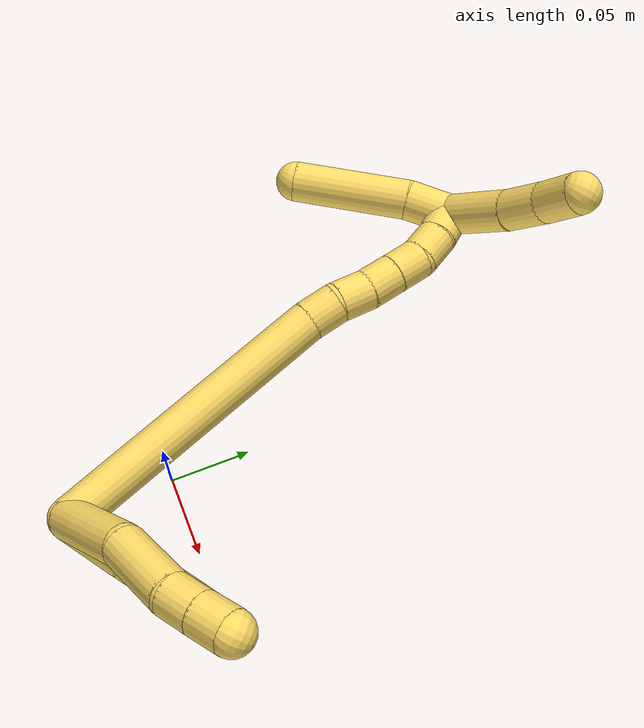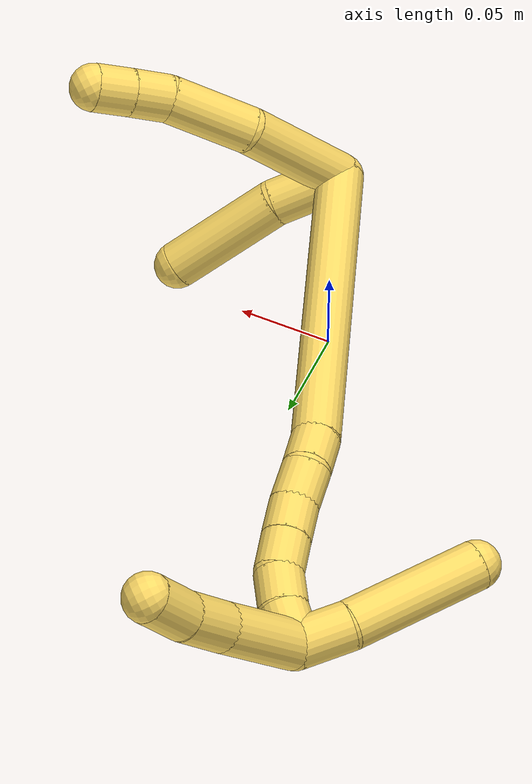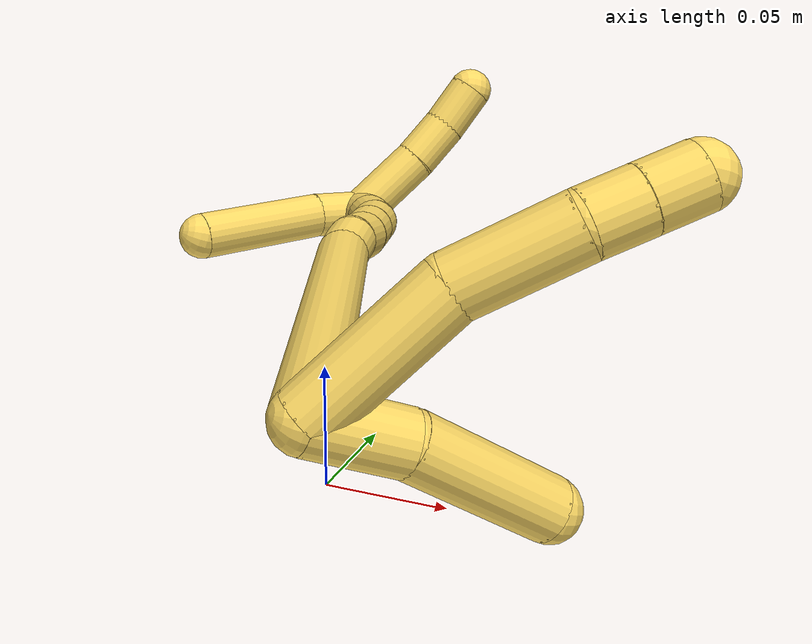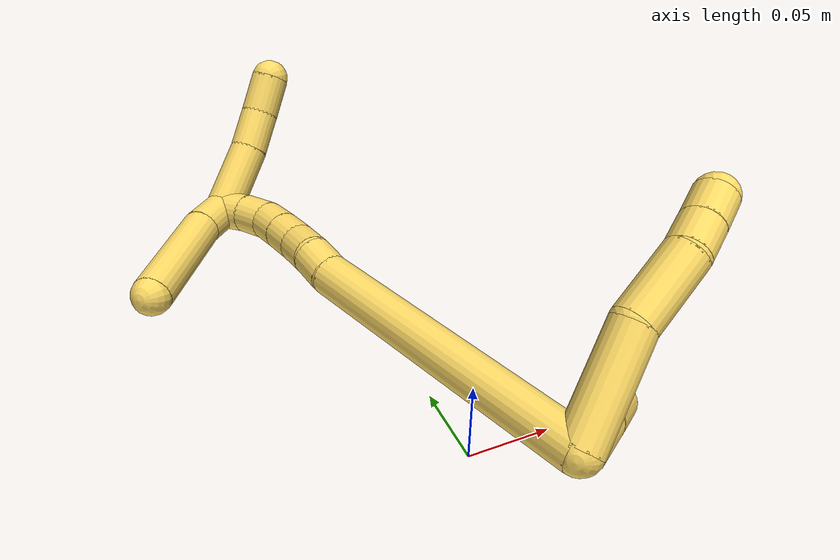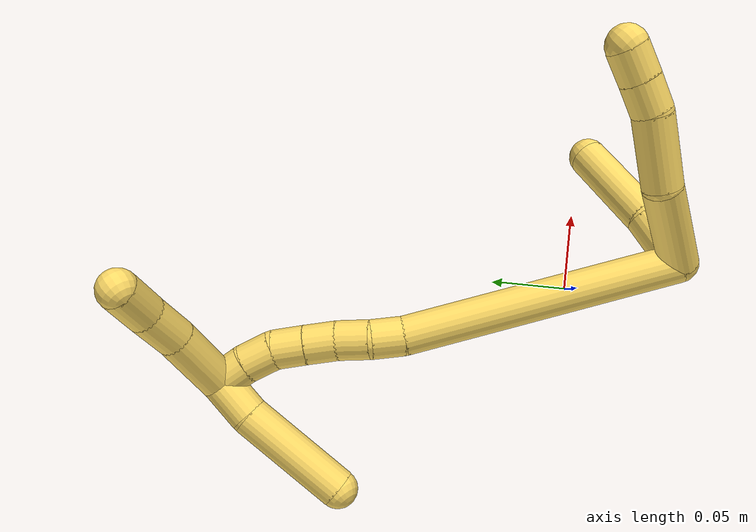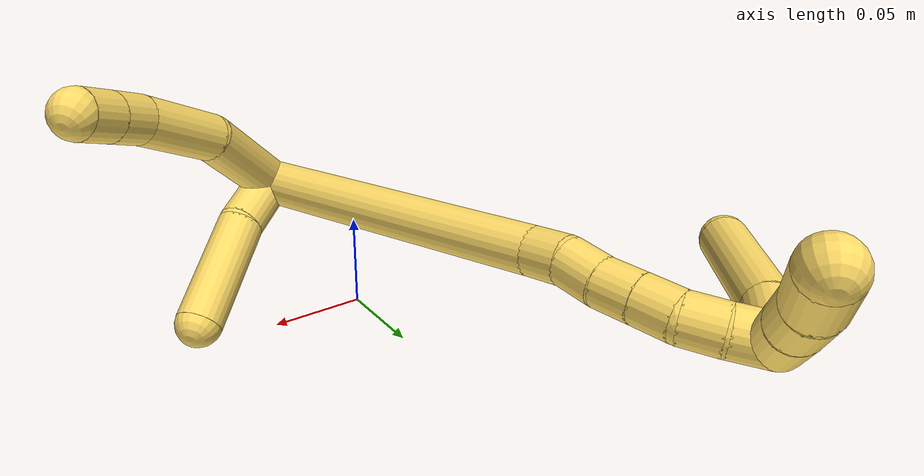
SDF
<sdf version="1.7">
 <world name="default">
  <model name="5">
   <static>0</static>
   <link name="5">
    <collision name="collision-cylinder-e_1_2_8">
     <pose>0.025105 0.011756 -0.015418 -2.49014 0.913166 -1.93686</pose>
     <geometry><cylinder><radius>0.0125</radius><length>0.063441</length></cylinder></geometry>
     <surface>
      <friction><ode><mu>1.16</mu><mu2>1.16</mu2><slip1>0</slip1><slip2>0</slip2></ode></friction>
      <contact><ode><kp>1e+06</kp><kd>1</kd><max_vel>0</max_vel><min_depth>0.001</min_depth></ode></contact>
     </surface>
    </collision>
    <visual name="visual-cylinder-e_1_2_8">
     <pose>0.025105 0.011756 -0.015418 -2.49014 0.913166 -1.93686</pose>
     <geometry><cylinder><radius>0.0125</radius><length>0.063441</length></cylinder></geometry>
     <material><ambient>1 0.858824 0.4 1</ambient></material>
    </visual>
    <collision name="collision-cylinder-e_2_8_9">
     <pose>0.06788 0.026101 -0.045415 -2.9659 0.873353 -2.76857</pose>
     <geometry><cylinder><radius>0.0125</radius><length>0.046108</length></cylinder></geometry>
     <surface>
      <friction><ode><mu>1.16</mu><mu2>1.16</mu2><slip1>0</slip1><slip2>0</slip2></ode></friction>
      <contact><ode><kp>1e+06</kp><kd>1</kd><max_vel>0</max_vel><min_depth>0.001</min_depth></ode></contact>
     </surface>
    </collision>
    <visual name="visual-cylinder-e_2_8_9">
     <pose>0.06788 0.026101 -0.045415 -2.9659 0.873353 -2.76857</pose>
     <geometry><cylinder><radius>0.0125</radius><length>0.046108</length></cylinder></geometry>
     <material><ambient>1 0.858824 0.4 1</ambient></material>
    </visual>
    <collision name="collision-cylinder-e_3_9_10">
     <pose>0.091873 0.03074 -0.067686 -2.88099 0.671183 -2.42279</pose>
     <geometry><cylinder><radius>0.0125</radius><length>0.020331</length></cylinder></geometry>
     <surface>
      <friction><ode><mu>1.16</mu><mu2>1.16</mu2><slip1>0</slip1><slip2>0</slip2></ode></friction>
      <contact><ode><kp>1e+06</kp><kd>1</kd><max_vel>0</max_vel><min_depth>0.001</min_depth></ode></contact>
     </surface>
    </collision>
    <visual name="visual-cylinder-e_3_9_10">
     <pose>0.091873 0.03074 -0.067686 -2.88099 0.671183 -2.42279</pose>
     <geometry><cylinder><radius>0.0125</radius><length>0.020331</length></cylinder></geometry>
     <material><ambient>1 0.858824 0.4 1</ambient></material>
    </visual>
    <collision name="collision-cylinder-e_4_10_6">
     <pose>0.104302 0.03496 -0.083071 -2.86683 0.652389 -2.36563</pose>
     <geometry><cylinder><radius>0.0125</radius><length>0.02012</length></cylinder></geometry>
     <surface>
      <friction><ode><mu>1.16</mu><mu2>1.16</mu2><slip1>0</slip1><slip2>0</slip2></ode></friction>
      <contact><ode><kp>1e+06</kp><kd>1</kd><max_vel>0</max_vel><min_depth>0.001</min_depth></ode></contact>
     </surface>
    </collision>
    <visual name="visual-cylinder-e_4_10_6">
     <pose>0.104302 0.03496 -0.083071 -2.86683 0.652389 -2.36563</pose>
     <geometry><cylinder><radius>0.0125</radius><length>0.02012</length></cylinder></geometry>
     <material><ambient>1 0.858824 0.4 1</ambient></material>
    </visual>
    <collision name="collision-cylinder-e_1_2_11">
     <pose>0.001069 -0.002514 -0.018424 3.00599 0.05743 0.800345</pose>
     <geometry><cylinder><radius>0.0125</radius><length>0.03725</length></cylinder></geometry>
     <surface>
      <friction><ode><mu>1.16</mu><mu2>1.16</mu2><slip1>0</slip1><slip2>0</slip2></ode></friction>
      <contact><ode><kp>1e+06</kp><kd>1</kd><max_vel>0</max_vel><min_depth>0.001</min_depth></ode></contact>
     </surface>
    </collision>
    <visual name="visual-cylinder-e_1_2_11">
     <pose>0.001069 -0.002514 -0.018424 3.00599 0.05743 0.800345</pose>
     <geometry><cylinder><radius>0.0125</radius><length>0.03725</length></cylinder></geometry>
     <material><ambient>1 0.858824 0.4 1</ambient></material>
    </visual>
    <collision name="collision-cylinder-e_2_11_5">
     <pose>-0.002636 -0.011553 -0.067163 2.92958 -0.15275 -1.24696</pose>
     <geometry><cylinder><radius>0.0125</radius><length>0.06275</length></cylinder></geometry>
     <surface>
      <friction><ode><mu>1.16</mu><mu2>1.16</mu2><slip1>0</slip1><slip2>0</slip2></ode></friction>
      <contact><ode><kp>1e+06</kp><kd>1</kd><max_vel>0</max_vel><min_depth>0.001</min_depth></ode></contact>
     </surface>
    </collision>
    <visual name="visual-cylinder-e_2_11_5">
     <pose>-0.002636 -0.011553 -0.067163 2.92958 -0.15275 -1.24696</pose>
     <geometry><cylinder><radius>0.0125</radius><length>0.06275</length></cylinder></geometry>
     <material><ambient>1 0.858824 0.4 1</ambient></material>
    </visual>
    <collision name="collision-cylinder-e_1_2_12">
     <pose>-0.037162 0.07316 -0.034998 -2.017 -0.429671 0.666691</pose>
     <geometry><cylinder><radius>0.0125</radius><length>0.178419</length></cylinder></geometry>
     <surface>
      <friction><ode><mu>1.16</mu><mu2>1.16</mu2><slip1>0</slip1><slip2>0</slip2></ode></friction>
      <contact><ode><kp>1e+06</kp><kd>1</kd><max_vel>0</max_vel><min_depth>0.001</min_depth></ode></contact>
     </surface>
    </collision>
    <visual name="visual-cylinder-e_1_2_12">
     <pose>-0.037162 0.07316 -0.034998 -2.017 -0.429671 0.666691</pose>
     <geometry><cylinder><radius>0.0125</radius><length>0.178419</length></cylinder></geometry>
     <material><ambient>1 0.858824 0.4 1</ambient></material>
    </visual>
    <collision name="collision-cylinder-e_2_12_13">
     <pose>-0.077281 0.154756 -0.075092 -2.11424 -0.291495 0.509058</pose>
     <geometry><cylinder><radius>0.0125</radius><length>0.020579</length></cylinder></geometry>
     <surface>
      <friction><ode><mu>1.16</mu><mu2>1.16</mu2><slip1>0</slip1><slip2>0</slip2></ode></friction>
      <contact><ode><kp>1e+06</kp><kd>1</kd><max_vel>0</max_vel><min_depth>0.001</min_depth></ode></contact>
     </surface>
    </collision>
    <visual name="visual-cylinder-e_2_12_13">
     <pose>-0.077281 0.154756 -0.075092 -2.11424 -0.291495 0.509058</pose>
     <geometry><cylinder><radius>0.0125</radius><length>0.020579</length></cylinder></geometry>
     <material><ambient>1 0.858824 0.4 1</ambient></material>
    </visual>
    <collision name="collision-cylinder-e_3_13_14">
     <pose>-0.084676 0.170145 -0.086685 -2.32233 -0.436355 0.944215</pose>
     <geometry><cylinder><radius>0.0125</radius><length>0.021</length></cylinder></geometry>
     <surface>
      <friction><ode><mu>1.16</mu><mu2>1.16</mu2><slip1>0</slip1><slip2>0</slip2></ode></friction>
      <contact><ode><kp>1e+06</kp><kd>1</kd><max_vel>0</max_vel><min_depth>0.001</min_depth></ode></contact>
     </surface>
    </collision>
    <visual name="visual-cylinder-e_3_13_14">
     <pose>-0.084676 0.170145 -0.086685 -2.32233 -0.436355 0.944215</pose>
     <geometry><cylinder><radius>0.0125</radius><length>0.021</length></cylinder></geometry>
     <material><ambient>1 0.858824 0.4 1</ambient></material>
    </visual>
    <collision name="collision-cylinder-e_4_14_15">
     <pose>-0.093309 0.184551 -0.098364 -2.17824 -0.432944 0.796448</pose>
     <geometry><cylinder><radius>0.0125</radius><length>0.020001</length></cylinder></geometry>
     <surface>
      <friction><ode><mu>1.16</mu><mu2>1.16</mu2><slip1>0</slip1><slip2>0</slip2></ode></friction>
      <contact><ode><kp>1e+06</kp><kd>1</kd><max_vel>0</max_vel><min_depth>0.001</min_depth></ode></contact>
     </surface>
    </collision>
    <visual name="visual-cylinder-e_4_14_15">
     <pose>-0.093309 0.184551 -0.098364 -2.17824 -0.432944 0.796448</pose>
     <geometry><cylinder><radius>0.0125</radius><length>0.020001</length></cylinder></geometry>
     <material><ambient>1 0.858824 0.4 1</ambient></material>
    </visual>
    <collision name="collision-cylinder-e_5_15_16">
     <pose>-0.101934 0.199377 -0.108648 -2.17624 -0.45886 0.83851</pose>
     <geometry><cylinder><radius>0.0125</radius><length>0.020001</length></cylinder></geometry>
     <surface>
      <friction><ode><mu>1.16</mu><mu2>1.16</mu2><slip1>0</slip1><slip2>0</slip2></ode></friction>
      <contact><ode><kp>1e+06</kp><kd>1</kd><max_vel>0</max_vel><min_depth>0.001</min_depth></ode></contact>
     </surface>
    </collision>
    <visual name="visual-cylinder-e_5_15_16">
     <pose>-0.101934 0.199377 -0.108648 -2.17624 -0.45886 0.83851</pose>
     <geometry><cylinder><radius>0.0125</radius><length>0.020001</length></cylinder></geometry>
     <material><ambient>1 0.858824 0.4 1</ambient></material>
    </visual>
    <collision name="collision-cylinder-e_6_16_17">
     <pose>-0.112156 0.214509 -0.116245 -1.88183 -0.617864 0.825381</pose>
     <geometry><cylinder><radius>0.0125</radius><length>0.02</length></cylinder></geometry>
     <surface>
      <friction><ode><mu>1.16</mu><mu2>1.16</mu2><slip1>0</slip1><slip2>0</slip2></ode></friction>
      <contact><ode><kp>1e+06</kp><kd>1</kd><max_vel>0</max_vel><min_depth>0.001</min_depth></ode></contact>
     </surface>
    </collision>
    <visual name="visual-cylinder-e_6_16_17">
     <pose>-0.112156 0.214509 -0.116245 -1.88183 -0.617864 0.825381</pose>
     <geometry><cylinder><radius>0.0125</radius><length>0.02</length></cylinder></geometry>
     <material><ambient>1 0.858824 0.4 1</ambient></material>
    </visual>
    <collision name="collision-cylinder-e_7_17_1">
     <pose>-0.124478 0.229751 -0.11993 -1.72855 -0.711255 0.820914</pose>
     <geometry><cylinder><radius>0.0125</radius><length>0.020001</length></cylinder></geometry>
     <surface>
      <friction><ode><mu>1.16</mu><mu2>1.16</mu2><slip1>0</slip1><slip2>0</slip2></ode></friction>
      <contact><ode><kp>1e+06</kp><kd>1</kd><max_vel>0</max_vel><min_depth>0.001</min_depth></ode></contact>
     </surface>
    </collision>
    <visual name="visual-cylinder-e_7_17_1">
     <pose>-0.124478 0.229751 -0.11993 -1.72855 -0.711255 0.820914</pose>
     <geometry><cylinder><radius>0.0125</radius><length>0.020001</length></cylinder></geometry>
     <material><ambient>1 0.858824 0.4 1</ambient></material>
    </visual>
    <collision name="collision-cylinder-e_1_1_18">
     <pose>-0.11473 0.248052 -0.133301 -2.41535 0.784904 -1.65628</pose>
     <geometry><cylinder><radius>0.0125</radius><length>0.046057</length></cylinder></geometry>
     <surface>
      <friction><ode><mu>1.16</mu><mu2>1.16</mu2><slip1>0</slip1><slip2>0</slip2></ode></friction>
      <contact><ode><kp>1e+06</kp><kd>1</kd><max_vel>0</max_vel><min_depth>0.001</min_depth></ode></contact>
     </surface>
    </collision>
    <visual name="visual-cylinder-e_1_1_18">
     <pose>-0.11473 0.248052 -0.133301 -2.41535 0.784904 -1.65628</pose>
     <geometry><cylinder><radius>0.0125</radius><length>0.046057</length></cylinder></geometry>
     <material><ambient>1 0.858824 0.4 1</ambient></material>
    </visual>
    <collision name="collision-cylinder-e_2_18_19">
     <pose>-0.088896 0.266279 -0.151636 -2.26394 0.781622 -1.44084</pose>
     <geometry><cylinder><radius>0.0125</radius><length>0.027139</length></cylinder></geometry>
     <surface>
      <friction><ode><mu>1.16</mu><mu2>1.16</mu2><slip1>0</slip1><slip2>0</slip2></ode></friction>
      <contact><ode><kp>1e+06</kp><kd>1</kd><max_vel>0</max_vel><min_depth>0.001</min_depth></ode></contact>
     </surface>
    </collision>
    <visual name="visual-cylinder-e_2_18_19">
     <pose>-0.088896 0.266279 -0.151636 -2.26394 0.781622 -1.44084</pose>
     <geometry><cylinder><radius>0.0125</radius><length>0.027139</length></cylinder></geometry>
     <material><ambient>1 0.858824 0.4 1</ambient></material>
    </visual>
    <collision name="collision-cylinder-e_3_19_4">
     <pose>-0.06893 0.280767 -0.162392 -2.1473 0.889171 -1.44103</pose>
     <geometry><cylinder><radius>0.0125</radius><length>0.026805</length></cylinder></geometry>
     <surface>
      <friction><ode><mu>1.16</mu><mu2>1.16</mu2><slip1>0</slip1><slip2>0</slip2></ode></friction>
      <contact><ode><kp>1e+06</kp><kd>1</kd><max_vel>0</max_vel><min_depth>0.001</min_depth></ode></contact>
     </surface>
    </collision>
    <visual name="visual-cylinder-e_3_19_4">
     <pose>-0.06893 0.280767 -0.162392 -2.1473 0.889171 -1.44103</pose>
     <geometry><cylinder><radius>0.0125</radius><length>0.026805</length></cylinder></geometry>
     <material><ambient>1 0.858824 0.4 1</ambient></material>
    </visual>
    <collision name="collision-cylinder-e_1_1_20">
     <pose>-0.13389 0.234641 -0.107661 0.19027 -0.207371 -0.019859</pose>
     <geometry><cylinder><radius>0.0125</radius><length>0.028013</length></cylinder></geometry>
     <surface>
      <friction><ode><mu>1.16</mu><mu2>1.16</mu2><slip1>0</slip1><slip2>0</slip2></ode></friction>
      <contact><ode><kp>1e+06</kp><kd>1</kd><max_vel>0</max_vel><min_depth>0.001</min_depth></ode></contact>
     </surface>
    </collision>
    <visual name="visual-cylinder-e_1_1_20">
     <pose>-0.13389 0.234641 -0.107661 0.19027 -0.207371 -0.019859</pose>
     <geometry><cylinder><radius>0.0125</radius><length>0.028013</length></cylinder></geometry>
     <material><ambient>1 0.858824 0.4 1</ambient></material>
    </visual>
    <collision name="collision-cylinder-e_2_20_3">
     <pose>-0.142489 0.219619 -0.06091 0.357327 -0.159458 -0.028855</pose>
     <geometry><cylinder><radius>0.0125</radius><length>0.071987</length></cylinder></geometry>
     <surface>
      <friction><ode><mu>1.16</mu><mu2>1.16</mu2><slip1>0</slip1><slip2>0</slip2></ode></friction>
      <contact><ode><kp>1e+06</kp><kd>1</kd><max_vel>0</max_vel><min_depth>0.001</min_depth></ode></contact>
     </surface>
    </collision>
    <visual name="visual-cylinder-e_2_20_3">
     <pose>-0.142489 0.219619 -0.06091 0.357327 -0.159458 -0.028855</pose>
     <geometry><cylinder><radius>0.0125</radius><length>0.071987</length></cylinder></geometry>
     <material><ambient>1 0.858824 0.4 1</ambient></material>
    </visual>
    <collision name="collision-sphere-3">
     <pose>-0.148204 0.207189 -0.027618 0 -0 0</pose>
     <geometry><sphere><radius>0.0125</radius></sphere></geometry>
     <surface>
      <friction><ode><mu>1.16</mu><mu2>1.16</mu2><slip1>0</slip1><slip2>0</slip2></ode></friction>
      <contact><ode><kp>1e+06</kp><kd>1</kd><max_vel>0</max_vel><min_depth>0.001</min_depth></ode></contact>
     </surface>
    </collision>
    <visual name="visual-sphere-3">
     <pose>-0.148204 0.207189 -0.027618 0 -0 0</pose>
     <geometry><sphere><radius>0.0125</radius></sphere></geometry>
     <material><ambient>1 0.858824 0.4 1</ambient></material>
    </visual>
    <collision name="collision-sphere-20">
     <pose>-0.136774 0.232048 -0.094202 0 -0 0</pose>
     <geometry><sphere><radius>0.0125</radius></sphere></geometry>
     <surface>
      <friction><ode><mu>1.16</mu><mu2>1.16</mu2><slip1>0</slip1><slip2>0</slip2></ode></friction>
      <contact><ode><kp>1e+06</kp><kd>1</kd><max_vel>0</max_vel><min_depth>0.001</min_depth></ode></contact>
     </surface>
    </collision>
    <visual name="visual-sphere-20">
     <pose>-0.136774 0.232048 -0.094202 0 -0 0</pose>
     <geometry><sphere><radius>0.0125</radius></sphere></geometry>
     <material><ambient>1 0.858824 0.4 1</ambient></material>
    </visual>
    <collision name="collision-sphere-4">
     <pose>-0.058523 0.287846 -0.166995 0 -0 0</pose>
     <geometry><sphere><radius>0.0125</radius></sphere></geometry>
     <surface>
      <friction><ode><mu>1.16</mu><mu2>1.16</mu2><slip1>0</slip1><slip2>0</slip2></ode></friction>
      <contact><ode><kp>1e+06</kp><kd>1</kd><max_vel>0</max_vel><min_depth>0.001</min_depth></ode></contact>
     </surface>
    </collision>
    <visual name="visual-sphere-4">
     <pose>-0.058523 0.287846 -0.166995 0 -0 0</pose>
     <geometry><sphere><radius>0.0125</radius></sphere></geometry>
     <material><ambient>1 0.858824 0.4 1</ambient></material>
    </visual>
    <collision name="collision-sphere-11">
     <pose>0.002138 -0.005027 -0.036847 0 -0 0</pose>
     <geometry><sphere><radius>0.0125</radius></sphere></geometry>
     <surface>
      <friction><ode><mu>1.16</mu><mu2>1.16</mu2><slip1>0</slip1><slip2>0</slip2></ode></friction>
      <contact><ode><kp>1e+06</kp><kd>1</kd><max_vel>0</max_vel><min_depth>0.001</min_depth></ode></contact>
     </surface>
    </collision>
    <visual name="visual-sphere-11">
     <pose>0.002138 -0.005027 -0.036847 0 -0 0</pose>
     <geometry><sphere><radius>0.0125</radius></sphere></geometry>
     <material><ambient>1 0.858824 0.4 1</ambient></material>
    </visual>
    <collision name="collision-sphere-6">
     <pose>0.11041 0.037129 -0.090765 0 -0 0</pose>
     <geometry><sphere><radius>0.0125</radius></sphere></geometry>
     <surface>
      <friction><ode><mu>1.16</mu><mu2>1.16</mu2><slip1>0</slip1><slip2>0</slip2></ode></friction>
      <contact><ode><kp>1e+06</kp><kd>1</kd><max_vel>0</max_vel><min_depth>0.001</min_depth></ode></contact>
     </surface>
    </collision>
    <visual name="visual-sphere-6">
     <pose>0.11041 0.037129 -0.090765 0 -0 0</pose>
     <geometry><sphere><radius>0.0125</radius></sphere></geometry>
     <material><ambient>1 0.858824 0.4 1</ambient></material>
    </visual>
    <collision name="collision-sphere-10">
     <pose>0.098195 0.032791 -0.075377 0 -0 0</pose>
     <geometry><sphere><radius>0.0125</radius></sphere></geometry>
     <surface>
      <friction><ode><mu>1.16</mu><mu2>1.16</mu2><slip1>0</slip1><slip2>0</slip2></ode></friction>
      <contact><ode><kp>1e+06</kp><kd>1</kd><max_vel>0</max_vel><min_depth>0.001</min_depth></ode></contact>
     </surface>
    </collision>
    <visual name="visual-sphere-10">
     <pose>0.098195 0.032791 -0.075377 0 -0 0</pose>
     <geometry><sphere><radius>0.0125</radius></sphere></geometry>
     <material><ambient>1 0.858824 0.4 1</ambient></material>
    </visual>
    <collision name="collision-sphere-9">
     <pose>0.085551 0.028689 -0.059994 0 -0 0</pose>
     <geometry><sphere><radius>0.0125</radius></sphere></geometry>
     <surface>
      <friction><ode><mu>1.16</mu><mu2>1.16</mu2><slip1>0</slip1><slip2>0</slip2></ode></friction>
      <contact><ode><kp>1e+06</kp><kd>1</kd><max_vel>0</max_vel><min_depth>0.001</min_depth></ode></contact>
     </surface>
    </collision>
    <visual name="visual-sphere-9">
     <pose>0.085551 0.028689 -0.059994 0 -0 0</pose>
     <geometry><sphere><radius>0.0125</radius></sphere></geometry>
     <material><ambient>1 0.858824 0.4 1</ambient></material>
    </visual>
    <collision name="collision-sphere-2">
     <geometry><sphere><radius>0.0125</radius></sphere></geometry>
     <surface>
      <friction><ode><mu>1.16</mu><mu2>1.16</mu2><slip1>0</slip1><slip2>0</slip2></ode></friction>
      <contact><ode><kp>1e+06</kp><kd>1</kd><max_vel>0</max_vel><min_depth>0.001</min_depth></ode></contact>
     </surface>
    </collision>
    <visual name="visual-sphere-2">
     <geometry><sphere><radius>0.0125</radius></sphere></geometry>
     <material><ambient>1 0.858824 0.4 1</ambient></material>
    </visual>
    <collision name="collision-sphere-19">
     <pose>-0.079338 0.273688 -0.157789 0 -0 0</pose>
     <geometry><sphere><radius>0.0125</radius></sphere></geometry>
     <surface>
      <friction><ode><mu>1.16</mu><mu2>1.16</mu2><slip1>0</slip1><slip2>0</slip2></ode></friction>
      <contact><ode><kp>1e+06</kp><kd>1</kd><max_vel>0</max_vel><min_depth>0.001</min_depth></ode></contact>
     </surface>
    </collision>
    <visual name="visual-sphere-19">
     <pose>-0.079338 0.273688 -0.157789 0 -0 0</pose>
     <geometry><sphere><radius>0.0125</radius></sphere></geometry>
     <material><ambient>1 0.858824 0.4 1</ambient></material>
    </visual>
    <collision name="collision-sphere-8">
     <pose>0.05021 0.023513 -0.030836 0 -0 0</pose>
     <geometry><sphere><radius>0.0125</radius></sphere></geometry>
     <surface>
      <friction><ode><mu>1.16</mu><mu2>1.16</mu2><slip1>0</slip1><slip2>0</slip2></ode></friction>
      <contact><ode><kp>1e+06</kp><kd>1</kd><max_vel>0</max_vel><min_depth>0.001</min_depth></ode></contact>
     </surface>
    </collision>
    <visual name="visual-sphere-8">
     <pose>0.05021 0.023513 -0.030836 0 -0 0</pose>
     <geometry><sphere><radius>0.0125</radius></sphere></geometry>
     <material><ambient>1 0.858824 0.4 1</ambient></material>
    </visual>
    <collision name="collision-sphere-5">
     <pose>-0.00741 -0.018078 -0.097478 0 -0 0</pose>
     <geometry><sphere><radius>0.0125</radius></sphere></geometry>
     <surface>
      <friction><ode><mu>1.16</mu><mu2>1.16</mu2><slip1>0</slip1><slip2>0</slip2></ode></friction>
      <contact><ode><kp>1e+06</kp><kd>1</kd><max_vel>0</max_vel><min_depth>0.001</min_depth></ode></contact>
     </surface>
    </collision>
    <visual name="visual-sphere-5">
     <pose>-0.00741 -0.018078 -0.097478 0 -0 0</pose>
     <geometry><sphere><radius>0.0125</radius></sphere></geometry>
     <material><ambient>1 0.858824 0.4 1</ambient></material>
    </visual>
    <collision name="collision-sphere-12">
     <pose>-0.074324 0.146321 -0.069996 0 -0 0</pose>
     <geometry><sphere><radius>0.0125</radius></sphere></geometry>
     <surface>
      <friction><ode><mu>1.16</mu><mu2>1.16</mu2><slip1>0</slip1><slip2>0</slip2></ode></friction>
      <contact><ode><kp>1e+06</kp><kd>1</kd><max_vel>0</max_vel><min_depth>0.001</min_depth></ode></contact>
     </surface>
    </collision>
    <visual name="visual-sphere-12">
     <pose>-0.074324 0.146321 -0.069996 0 -0 0</pose>
     <geometry><sphere><radius>0.0125</radius></sphere></geometry>
     <material><ambient>1 0.858824 0.4 1</ambient></material>
    </visual>
    <collision name="collision-sphere-13">
     <pose>-0.080238 0.163192 -0.080188 0 -0 0</pose>
     <geometry><sphere><radius>0.0125</radius></sphere></geometry>
     <surface>
      <friction><ode><mu>1.16</mu><mu2>1.16</mu2><slip1>0</slip1><slip2>0</slip2></ode></friction>
      <contact><ode><kp>1e+06</kp><kd>1</kd><max_vel>0</max_vel><min_depth>0.001</min_depth></ode></contact>
     </surface>
    </collision>
    <visual name="visual-sphere-13">
     <pose>-0.080238 0.163192 -0.080188 0 -0 0</pose>
     <geometry><sphere><radius>0.0125</radius></sphere></geometry>
     <material><ambient>1 0.858824 0.4 1</ambient></material>
    </visual>
    <collision name="collision-sphere-14">
     <pose>-0.089114 0.177097 -0.093183 0 -0 0</pose>
     <geometry><sphere><radius>0.0125</radius></sphere></geometry>
     <surface>
      <friction><ode><mu>1.16</mu><mu2>1.16</mu2><slip1>0</slip1><slip2>0</slip2></ode></friction>
      <contact><ode><kp>1e+06</kp><kd>1</kd><max_vel>0</max_vel><min_depth>0.001</min_depth></ode></contact>
     </surface>
    </collision>
    <visual name="visual-sphere-14">
     <pose>-0.089114 0.177097 -0.093183 0 -0 0</pose>
     <geometry><sphere><radius>0.0125</radius></sphere></geometry>
     <material><ambient>1 0.858824 0.4 1</ambient></material>
    </visual>
    <collision name="collision-sphere-15">
     <pose>-0.097505 0.192005 -0.103545 0 -0 0</pose>
     <geometry><sphere><radius>0.0125</radius></sphere></geometry>
     <surface>
      <friction><ode><mu>1.16</mu><mu2>1.16</mu2><slip1>0</slip1><slip2>0</slip2></ode></friction>
      <contact><ode><kp>1e+06</kp><kd>1</kd><max_vel>0</max_vel><min_depth>0.001</min_depth></ode></contact>
     </surface>
    </collision>
    <visual name="visual-sphere-15">
     <pose>-0.097505 0.192005 -0.103545 0 -0 0</pose>
     <geometry><sphere><radius>0.0125</radius></sphere></geometry>
     <material><ambient>1 0.858824 0.4 1</ambient></material>
    </visual>
    <collision name="collision-sphere-16">
     <pose>-0.106363 0.206749 -0.113751 0 -0 0</pose>
     <geometry><sphere><radius>0.0125</radius></sphere></geometry>
     <surface>
      <friction><ode><mu>1.16</mu><mu2>1.16</mu2><slip1>0</slip1><slip2>0</slip2></ode></friction>
      <contact><ode><kp>1e+06</kp><kd>1</kd><max_vel>0</max_vel><min_depth>0.001</min_depth></ode></contact>
     </surface>
    </collision>
    <visual name="visual-sphere-16">
     <pose>-0.106363 0.206749 -0.113751 0 -0 0</pose>
     <geometry><sphere><radius>0.0125</radius></sphere></geometry>
     <material><ambient>1 0.858824 0.4 1</ambient></material>
    </visual>
    <collision name="collision-sphere-17">
     <pose>-0.11795 0.222269 -0.11874 0 -0 0</pose>
     <geometry><sphere><radius>0.0125</radius></sphere></geometry>
     <surface>
      <friction><ode><mu>1.16</mu><mu2>1.16</mu2><slip1>0</slip1><slip2>0</slip2></ode></friction>
      <contact><ode><kp>1e+06</kp><kd>1</kd><max_vel>0</max_vel><min_depth>0.001</min_depth></ode></contact>
     </surface>
    </collision>
    <visual name="visual-sphere-17">
     <pose>-0.11795 0.222269 -0.11874 0 -0 0</pose>
     <geometry><sphere><radius>0.0125</radius></sphere></geometry>
     <material><ambient>1 0.858824 0.4 1</ambient></material>
    </visual>
    <collision name="collision-sphere-1">
     <pose>-0.131006 0.237233 -0.12112 0 -0 0</pose>
     <geometry><sphere><radius>0.0125</radius></sphere></geometry>
     <surface>
      <friction><ode><mu>1.16</mu><mu2>1.16</mu2><slip1>0</slip1><slip2>0</slip2></ode></friction>
      <contact><ode><kp>1e+06</kp><kd>1</kd><max_vel>0</max_vel><min_depth>0.001</min_depth></ode></contact>
     </surface>
    </collision>
    <visual name="visual-sphere-1">
     <pose>-0.131006 0.237233 -0.12112 0 -0 0</pose>
     <geometry><sphere><radius>0.0125</radius></sphere></geometry>
     <material><ambient>1 0.858824 0.4 1</ambient></material>
    </visual>
    <collision name="collision-sphere-18">
     <pose>-0.098455 0.25887 -0.145482 0 -0 0</pose>
     <geometry><sphere><radius>0.0125</radius></sphere></geometry>
     <surface>
      <friction><ode><mu>1.16</mu><mu2>1.16</mu2><slip1>0</slip1><slip2>0</slip2></ode></friction>
      <contact><ode><kp>1e+06</kp><kd>1</kd><max_vel>0</max_vel><min_depth>0.001</min_depth></ode></contact>
     </surface>
    </collision>
    <visual name="visual-sphere-18">
     <pose>-0.098455 0.25887 -0.145482 0 -0 0</pose>
     <geometry><sphere><radius>0.0125</radius></sphere></geometry>
     <material><ambient>1 0.858824 0.4 1</ambient></material>
    </visual>
    <inertial>
     <pose>-0.044834 0.116525 -0.06867 0 -0 0</pose>
     <mass>0.75</mass>
     <inertia>
      <ixx>0.000614</ixx>
      <ixy>0</ixy>
      <ixz>0</ixz>
      <iyy>0.000261</iyy>
      <iyz>0</iyz>
      <izz>-0.000247</izz>
     </inertia>
    </inertial>
   </link>
   <pose>0.021561 -0.061003 0.057624 1.07591 -0.861392 -0.390736</pose>
  </model>
 </world>
</sdf>
